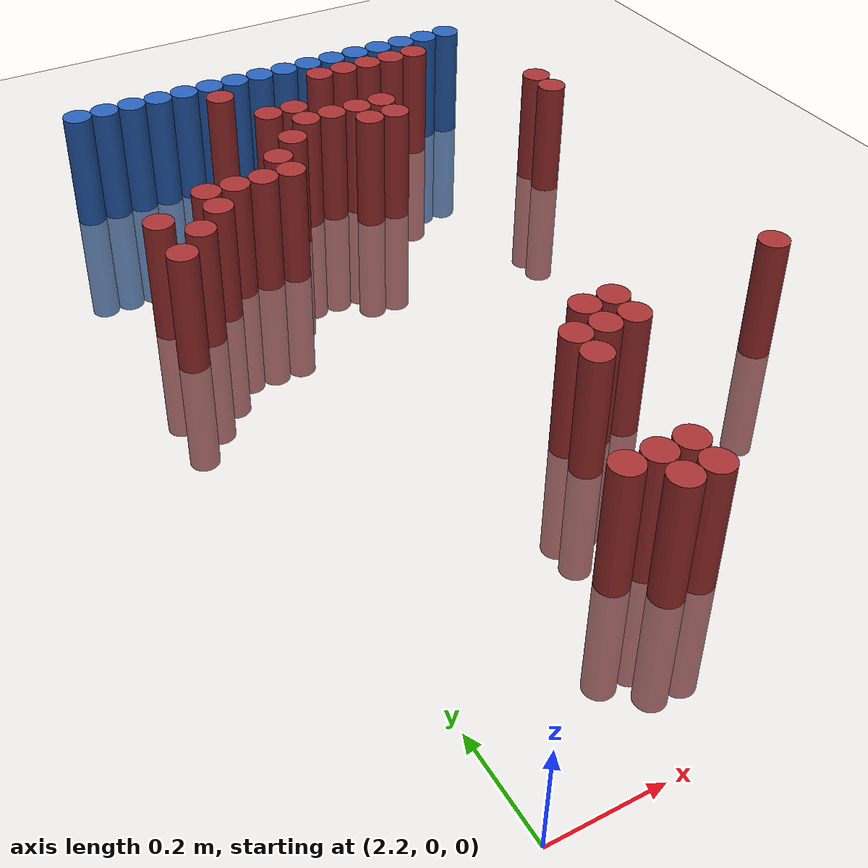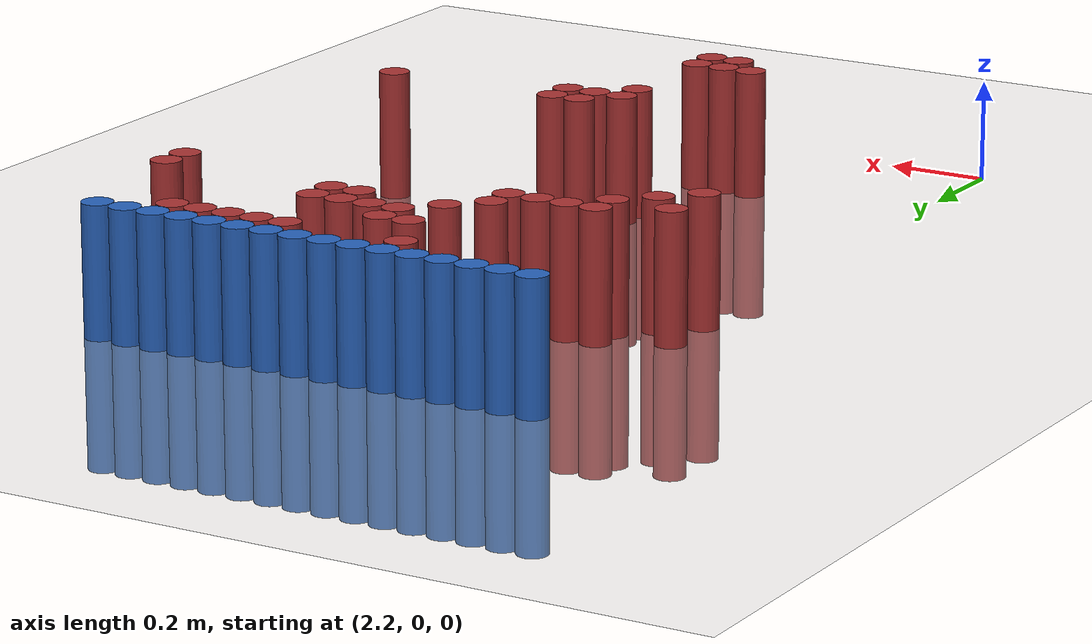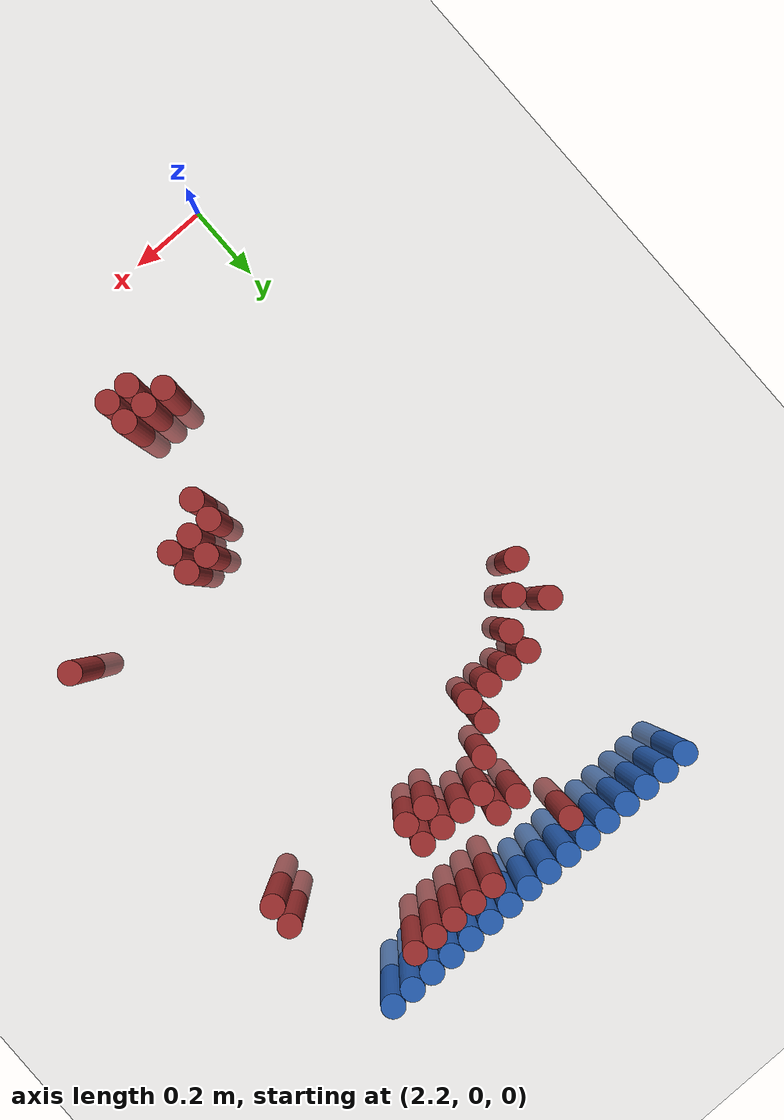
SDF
<sdf version="1.6">
 <world name="default">
  <model name="ground_plane">
   <static>1</static>
   <link name="link">
    <collision name="collision">
     <geometry><plane><normal>0 0 1</normal><size>100 100</size></plane></geometry>
     <surface><friction><ode><mu>100</mu><mu2>50</mu2></ode></friction></surface>
    </collision>
    <visual name="visual">
     <cast_shadows>0</cast_shadows>
     <geometry><plane><normal>0 0 1</normal><size>100 100</size></plane></geometry>
     <material>
      <script><uri>file://media/materials/scripts/gazebo.material</uri><name>Gazebo/Grey</name></script>
     </material>
    </visual>
   </link>
  </model>
  <model name="unit_cylinder_97">
   <static>1</static>
   <pose>2.190000 1.770000 0.000000 0.000000 0.000000 0.000000</pose>
   <link name="link">
    <inertial>
     <mass>1</mass>
     <inertia><ixx>0.145833</ixx><ixy>0</ixy><ixz>0</ixz><iyy>0.145833</iyy><iyz>0</iyz><izz>0.125</izz></inertia>
    </inertial>
    <collision name="collision">
     <geometry><cylinder><radius>0.030000</radius><length>0.5</length></cylinder></geometry>
    </collision>
    <visual name="visual">
     <geometry><cylinder><radius>0.030000</radius><length>0.5</length></cylinder></geometry>
     <material>
      <ambient>0.152000 0.379000 0.720000 1</ambient>
      <diffuse>0.152000 0.379000 0.720000 1</diffuse>
     </material>
     <material>
      <script><name>Gazebo/Grey</name><uri>file://media/materials/scripts/gazebo.material</uri></script>
     </material>
    </visual>
   </link>
  </model>
  <model name="unit_cylinder_98">
   <static>1</static>
   <pose>2.250000 1.770000 0.000000 0.000000 0.000000 0.000000</pose>
   <link name="link">
    <inertial>
     <mass>1</mass>
     <inertia><ixx>0.145833</ixx><ixy>0</ixy><ixz>0</ixz><iyy>0.145833</iyy><iyz>0</iyz><izz>0.125</izz></inertia>
    </inertial>
    <collision name="collision">
     <geometry><cylinder><radius>0.030000</radius><length>0.5</length></cylinder></geometry>
    </collision>
    <visual name="visual">
     <geometry><cylinder><radius>0.030000</radius><length>0.5</length></cylinder></geometry>
     <material>
      <ambient>0.152000 0.379000 0.720000 1</ambient>
      <diffuse>0.152000 0.379000 0.720000 1</diffuse>
     </material>
     <material>
      <script><name>Gazebo/Grey</name><uri>file://media/materials/scripts/gazebo.material</uri></script>
     </material>
    </visual>
   </link>
  </model>
  <model name="unit_cylinder_99">
   <static>1</static>
   <pose>2.310000 1.770000 0.000000 0.000000 0.000000 0.000000</pose>
   <link name="link">
    <inertial>
     <mass>1</mass>
     <inertia><ixx>0.145833</ixx><ixy>0</ixy><ixz>0</ixz><iyy>0.145833</iyy><iyz>0</iyz><izz>0.125</izz></inertia>
    </inertial>
    <collision name="collision">
     <geometry><cylinder><radius>0.030000</radius><length>0.5</length></cylinder></geometry>
    </collision>
    <visual name="visual">
     <geometry><cylinder><radius>0.030000</radius><length>0.5</length></cylinder></geometry>
     <material>
      <ambient>0.152000 0.379000 0.720000 1</ambient>
      <diffuse>0.152000 0.379000 0.720000 1</diffuse>
     </material>
     <material>
      <script><name>Gazebo/Grey</name><uri>file://media/materials/scripts/gazebo.material</uri></script>
     </material>
    </visual>
   </link>
  </model>
  <model name="unit_cylinder_100">
   <static>1</static>
   <pose>2.370000 1.770000 0.000000 0.000000 0.000000 0.000000</pose>
   <link name="link">
    <inertial>
     <mass>1</mass>
     <inertia><ixx>0.145833</ixx><ixy>0</ixy><ixz>0</ixz><iyy>0.145833</iyy><iyz>0</iyz><izz>0.125</izz></inertia>
    </inertial>
    <collision name="collision">
     <geometry><cylinder><radius>0.030000</radius><length>0.5</length></cylinder></geometry>
    </collision>
    <visual name="visual">
     <geometry><cylinder><radius>0.030000</radius><length>0.5</length></cylinder></geometry>
     <material>
      <ambient>0.152000 0.379000 0.720000 1</ambient>
      <diffuse>0.152000 0.379000 0.720000 1</diffuse>
     </material>
     <material>
      <script><name>Gazebo/Grey</name><uri>file://media/materials/scripts/gazebo.material</uri></script>
     </material>
    </visual>
   </link>
  </model>
  <model name="unit_cylinder_101">
   <static>1</static>
   <pose>2.430000 1.770000 0.000000 0.000000 0.000000 0.000000</pose>
   <link name="link">
    <inertial>
     <mass>1</mass>
     <inertia><ixx>0.145833</ixx><ixy>0</ixy><ixz>0</ixz><iyy>0.145833</iyy><iyz>0</iyz><izz>0.125</izz></inertia>
    </inertial>
    <collision name="collision">
     <geometry><cylinder><radius>0.030000</radius><length>0.5</length></cylinder></geometry>
    </collision>
    <visual name="visual">
     <geometry><cylinder><radius>0.030000</radius><length>0.5</length></cylinder></geometry>
     <material>
      <ambient>0.152000 0.379000 0.720000 1</ambient>
      <diffuse>0.152000 0.379000 0.720000 1</diffuse>
     </material>
     <material>
      <script><name>Gazebo/Grey</name><uri>file://media/materials/scripts/gazebo.material</uri></script>
     </material>
    </visual>
   </link>
  </model>
  <model name="unit_cylinder_102">
   <static>1</static>
   <pose>2.490000 1.770000 0.000000 0.000000 0.000000 0.000000</pose>
   <link name="link">
    <inertial>
     <mass>1</mass>
     <inertia><ixx>0.145833</ixx><ixy>0</ixy><ixz>0</ixz><iyy>0.145833</iyy><iyz>0</iyz><izz>0.125</izz></inertia>
    </inertial>
    <collision name="collision">
     <geometry><cylinder><radius>0.030000</radius><length>0.5</length></cylinder></geometry>
    </collision>
    <visual name="visual">
     <geometry><cylinder><radius>0.030000</radius><length>0.5</length></cylinder></geometry>
     <material>
      <ambient>0.152000 0.379000 0.720000 1</ambient>
      <diffuse>0.152000 0.379000 0.720000 1</diffuse>
     </material>
     <material>
      <script><name>Gazebo/Grey</name><uri>file://media/materials/scripts/gazebo.material</uri></script>
     </material>
    </visual>
   </link>
  </model>
  <model name="unit_cylinder_103">
   <static>1</static>
   <pose>2.550000 1.770000 0.000000 0.000000 0.000000 0.000000</pose>
   <link name="link">
    <inertial>
     <mass>1</mass>
     <inertia><ixx>0.145833</ixx><ixy>0</ixy><ixz>0</ixz><iyy>0.145833</iyy><iyz>0</iyz><izz>0.125</izz></inertia>
    </inertial>
    <collision name="collision">
     <geometry><cylinder><radius>0.030000</radius><length>0.5</length></cylinder></geometry>
    </collision>
    <visual name="visual">
     <geometry><cylinder><radius>0.030000</radius><length>0.5</length></cylinder></geometry>
     <material>
      <ambient>0.152000 0.379000 0.720000 1</ambient>
      <diffuse>0.152000 0.379000 0.720000 1</diffuse>
     </material>
     <material>
      <script><name>Gazebo/Grey</name><uri>file://media/materials/scripts/gazebo.material</uri></script>
     </material>
    </visual>
   </link>
  </model>
  <model name="unit_cylinder_104">
   <static>1</static>
   <pose>2.610000 1.770000 0.000000 0.000000 0.000000 0.000000</pose>
   <link name="link">
    <inertial>
     <mass>1</mass>
     <inertia><ixx>0.145833</ixx><ixy>0</ixy><ixz>0</ixz><iyy>0.145833</iyy><iyz>0</iyz><izz>0.125</izz></inertia>
    </inertial>
    <collision name="collision">
     <geometry><cylinder><radius>0.030000</radius><length>0.5</length></cylinder></geometry>
    </collision>
    <visual name="visual">
     <geometry><cylinder><radius>0.030000</radius><length>0.5</length></cylinder></geometry>
     <material>
      <ambient>0.152000 0.379000 0.720000 1</ambient>
      <diffuse>0.152000 0.379000 0.720000 1</diffuse>
     </material>
     <material>
      <script><name>Gazebo/Grey</name><uri>file://media/materials/scripts/gazebo.material</uri></script>
     </material>
    </visual>
   </link>
  </model>
  <model name="unit_cylinder_105">
   <static>1</static>
   <pose>2.670000 1.770000 0.000000 0.000000 0.000000 0.000000</pose>
   <link name="link">
    <inertial>
     <mass>1</mass>
     <inertia><ixx>0.145833</ixx><ixy>0</ixy><ixz>0</ixz><iyy>0.145833</iyy><iyz>0</iyz><izz>0.125</izz></inertia>
    </inertial>
    <collision name="collision">
     <geometry><cylinder><radius>0.030000</radius><length>0.5</length></cylinder></geometry>
    </collision>
    <visual name="visual">
     <geometry><cylinder><radius>0.030000</radius><length>0.5</length></cylinder></geometry>
     <material>
      <ambient>0.152000 0.379000 0.720000 1</ambient>
      <diffuse>0.152000 0.379000 0.720000 1</diffuse>
     </material>
     <material>
      <script><name>Gazebo/Grey</name><uri>file://media/materials/scripts/gazebo.material</uri></script>
     </material>
    </visual>
   </link>
  </model>
  <model name="unit_cylinder_106">
   <static>1</static>
   <pose>2.730000 1.770000 0.000000 0.000000 0.000000 0.000000</pose>
   <link name="link">
    <inertial>
     <mass>1</mass>
     <inertia><ixx>0.145833</ixx><ixy>0</ixy><ixz>0</ixz><iyy>0.145833</iyy><iyz>0</iyz><izz>0.125</izz></inertia>
    </inertial>
    <collision name="collision">
     <geometry><cylinder><radius>0.030000</radius><length>0.5</length></cylinder></geometry>
    </collision>
    <visual name="visual">
     <geometry><cylinder><radius>0.030000</radius><length>0.5</length></cylinder></geometry>
     <material>
      <ambient>0.152000 0.379000 0.720000 1</ambient>
      <diffuse>0.152000 0.379000 0.720000 1</diffuse>
     </material>
     <material>
      <script><name>Gazebo/Grey</name><uri>file://media/materials/scripts/gazebo.material</uri></script>
     </material>
    </visual>
   </link>
  </model>
  <model name="unit_cylinder_107">
   <static>1</static>
   <pose>2.790000 1.770000 0.000000 0.000000 0.000000 0.000000</pose>
   <link name="link">
    <inertial>
     <mass>1</mass>
     <inertia><ixx>0.145833</ixx><ixy>0</ixy><ixz>0</ixz><iyy>0.145833</iyy><iyz>0</iyz><izz>0.125</izz></inertia>
    </inertial>
    <collision name="collision">
     <geometry><cylinder><radius>0.030000</radius><length>0.5</length></cylinder></geometry>
    </collision>
    <visual name="visual">
     <geometry><cylinder><radius>0.030000</radius><length>0.5</length></cylinder></geometry>
     <material>
      <ambient>0.152000 0.379000 0.720000 1</ambient>
      <diffuse>0.152000 0.379000 0.720000 1</diffuse>
     </material>
     <material>
      <script><name>Gazebo/Grey</name><uri>file://media/materials/scripts/gazebo.material</uri></script>
     </material>
    </visual>
   </link>
  </model>
  <model name="unit_cylinder_108">
   <static>1</static>
   <pose>2.850000 1.770000 0.000000 0.000000 0.000000 0.000000</pose>
   <link name="link">
    <inertial>
     <mass>1</mass>
     <inertia><ixx>0.145833</ixx><ixy>0</ixy><ixz>0</ixz><iyy>0.145833</iyy><iyz>0</iyz><izz>0.125</izz></inertia>
    </inertial>
    <collision name="collision">
     <geometry><cylinder><radius>0.030000</radius><length>0.5</length></cylinder></geometry>
    </collision>
    <visual name="visual">
     <geometry><cylinder><radius>0.030000</radius><length>0.5</length></cylinder></geometry>
     <material>
      <ambient>0.152000 0.379000 0.720000 1</ambient>
      <diffuse>0.152000 0.379000 0.720000 1</diffuse>
     </material>
     <material>
      <script><name>Gazebo/Grey</name><uri>file://media/materials/scripts/gazebo.material</uri></script>
     </material>
    </visual>
   </link>
  </model>
  <model name="unit_cylinder_109">
   <static>1</static>
   <pose>2.910000 1.770000 0.000000 0.000000 0.000000 0.000000</pose>
   <link name="link">
    <inertial>
     <mass>1</mass>
     <inertia><ixx>0.145833</ixx><ixy>0</ixy><ixz>0</ixz><iyy>0.145833</iyy><iyz>0</iyz><izz>0.125</izz></inertia>
    </inertial>
    <collision name="collision">
     <geometry><cylinder><radius>0.030000</radius><length>0.5</length></cylinder></geometry>
    </collision>
    <visual name="visual">
     <geometry><cylinder><radius>0.030000</radius><length>0.5</length></cylinder></geometry>
     <material>
      <ambient>0.152000 0.379000 0.720000 1</ambient>
      <diffuse>0.152000 0.379000 0.720000 1</diffuse>
     </material>
     <material>
      <script><name>Gazebo/Grey</name><uri>file://media/materials/scripts/gazebo.material</uri></script>
     </material>
    </visual>
   </link>
  </model>
  <model name="unit_cylinder_110">
   <static>1</static>
   <pose>2.970000 1.770000 0.000000 0.000000 0.000000 0.000000</pose>
   <link name="link">
    <inertial>
     <mass>1</mass>
     <inertia><ixx>0.145833</ixx><ixy>0</ixy><ixz>0</ixz><iyy>0.145833</iyy><iyz>0</iyz><izz>0.125</izz></inertia>
    </inertial>
    <collision name="collision">
     <geometry><cylinder><radius>0.030000</radius><length>0.5</length></cylinder></geometry>
    </collision>
    <visual name="visual">
     <geometry><cylinder><radius>0.030000</radius><length>0.5</length></cylinder></geometry>
     <material>
      <ambient>0.152000 0.379000 0.720000 1</ambient>
      <diffuse>0.152000 0.379000 0.720000 1</diffuse>
     </material>
     <material>
      <script><name>Gazebo/Grey</name><uri>file://media/materials/scripts/gazebo.material</uri></script>
     </material>
    </visual>
   </link>
  </model>
  <model name="unit_cylinder_111">
   <static>1</static>
   <pose>3.030000 1.770000 0.000000 0.000000 0.000000 0.000000</pose>
   <link name="link">
    <inertial>
     <mass>1</mass>
     <inertia><ixx>0.145833</ixx><ixy>0</ixy><ixz>0</ixz><iyy>0.145833</iyy><iyz>0</iyz><izz>0.125</izz></inertia>
    </inertial>
    <collision name="collision">
     <geometry><cylinder><radius>0.030000</radius><length>0.5</length></cylinder></geometry>
    </collision>
    <visual name="visual">
     <geometry><cylinder><radius>0.030000</radius><length>0.5</length></cylinder></geometry>
     <material>
      <ambient>0.152000 0.379000 0.720000 1</ambient>
      <diffuse>0.152000 0.379000 0.720000 1</diffuse>
     </material>
     <material>
      <script><name>Gazebo/Grey</name><uri>file://media/materials/scripts/gazebo.material</uri></script>
     </material>
    </visual>
   </link>
  </model>
  <model name="unit_cylinder_112">
   <static>1</static>
   <pose>3.090000 1.770000 0.000000 0.000000 0.000000 0.000000</pose>
   <link name="link">
    <inertial>
     <mass>1</mass>
     <inertia><ixx>0.145833</ixx><ixy>0</ixy><ixz>0</ixz><iyy>0.145833</iyy><iyz>0</iyz><izz>0.125</izz></inertia>
    </inertial>
    <collision name="collision">
     <geometry><cylinder><radius>0.030000</radius><length>0.5</length></cylinder></geometry>
    </collision>
    <visual name="visual">
     <geometry><cylinder><radius>0.030000</radius><length>0.5</length></cylinder></geometry>
     <material>
      <ambient>0.152000 0.379000 0.720000 1</ambient>
      <diffuse>0.152000 0.379000 0.720000 1</diffuse>
     </material>
     <material>
      <script><name>Gazebo/Grey</name><uri>file://media/materials/scripts/gazebo.material</uri></script>
     </material>
    </visual>
   </link>
  </model>
  <model name="unit_cylinder_125">
   <static>1</static>
   <pose>2.490000 1.710000 0.000000 0.000000 0.000000 0.000000</pose>
   <link name="link">
    <inertial>
     <mass>1</mass>
     <inertia><ixx>0.145833</ixx><ixy>0</ixy><ixz>0</ixz><iyy>0.145833</iyy><iyz>0</iyz><izz>0.125</izz></inertia>
    </inertial>
    <collision name="collision">
     <geometry><cylinder><radius>0.030000</radius><length>0.5</length></cylinder></geometry>
    </collision>
    <visual name="visual">
     <geometry><cylinder><radius>0.030000</radius><length>0.5</length></cylinder></geometry>
     <material>
      <ambient>0.648000 0.192000 0.192000 1</ambient>
      <diffuse>0.648000 0.192000 0.192000 1</diffuse>
     </material>
     <material>
      <script><name>Gazebo/Grey</name><uri>file://media/materials/scripts/gazebo.material</uri></script>
     </material>
    </visual>
   </link>
  </model>
  <model name="unit_cylinder_126">
   <static>1</static>
   <pose>2.730000 1.710000 0.000000 0.000000 0.000000 0.000000</pose>
   <link name="link">
    <inertial>
     <mass>1</mass>
     <inertia><ixx>0.145833</ixx><ixy>0</ixy><ixz>0</ixz><iyy>0.145833</iyy><iyz>0</iyz><izz>0.125</izz></inertia>
    </inertial>
    <collision name="collision">
     <geometry><cylinder><radius>0.030000</radius><length>0.5</length></cylinder></geometry>
    </collision>
    <visual name="visual">
     <geometry><cylinder><radius>0.030000</radius><length>0.5</length></cylinder></geometry>
     <material>
      <ambient>0.648000 0.192000 0.192000 1</ambient>
      <diffuse>0.648000 0.192000 0.192000 1</diffuse>
     </material>
     <material>
      <script><name>Gazebo/Grey</name><uri>file://media/materials/scripts/gazebo.material</uri></script>
     </material>
    </visual>
   </link>
  </model>
  <model name="unit_cylinder_127">
   <static>1</static>
   <pose>2.790000 1.710000 0.000000 0.000000 0.000000 0.000000</pose>
   <link name="link">
    <inertial>
     <mass>1</mass>
     <inertia><ixx>0.145833</ixx><ixy>0</ixy><ixz>0</ixz><iyy>0.145833</iyy><iyz>0</iyz><izz>0.125</izz></inertia>
    </inertial>
    <collision name="collision">
     <geometry><cylinder><radius>0.030000</radius><length>0.5</length></cylinder></geometry>
    </collision>
    <visual name="visual">
     <geometry><cylinder><radius>0.030000</radius><length>0.5</length></cylinder></geometry>
     <material>
      <ambient>0.648000 0.192000 0.192000 1</ambient>
      <diffuse>0.648000 0.192000 0.192000 1</diffuse>
     </material>
     <material>
      <script><name>Gazebo/Grey</name><uri>file://media/materials/scripts/gazebo.material</uri></script>
     </material>
    </visual>
   </link>
  </model>
  <model name="unit_cylinder_128">
   <static>1</static>
   <pose>2.850000 1.710000 0.000000 0.000000 0.000000 0.000000</pose>
   <link name="link">
    <inertial>
     <mass>1</mass>
     <inertia><ixx>0.145833</ixx><ixy>0</ixy><ixz>0</ixz><iyy>0.145833</iyy><iyz>0</iyz><izz>0.125</izz></inertia>
    </inertial>
    <collision name="collision">
     <geometry><cylinder><radius>0.030000</radius><length>0.5</length></cylinder></geometry>
    </collision>
    <visual name="visual">
     <geometry><cylinder><radius>0.030000</radius><length>0.5</length></cylinder></geometry>
     <material>
      <ambient>0.648000 0.192000 0.192000 1</ambient>
      <diffuse>0.648000 0.192000 0.192000 1</diffuse>
     </material>
     <material>
      <script><name>Gazebo/Grey</name><uri>file://media/materials/scripts/gazebo.material</uri></script>
     </material>
    </visual>
   </link>
  </model>
  <model name="unit_cylinder_129">
   <static>1</static>
   <pose>2.910000 1.710000 0.000000 0.000000 0.000000 0.000000</pose>
   <link name="link">
    <inertial>
     <mass>1</mass>
     <inertia><ixx>0.145833</ixx><ixy>0</ixy><ixz>0</ixz><iyy>0.145833</iyy><iyz>0</iyz><izz>0.125</izz></inertia>
    </inertial>
    <collision name="collision">
     <geometry><cylinder><radius>0.030000</radius><length>0.5</length></cylinder></geometry>
    </collision>
    <visual name="visual">
     <geometry><cylinder><radius>0.030000</radius><length>0.5</length></cylinder></geometry>
     <material>
      <ambient>0.648000 0.192000 0.192000 1</ambient>
      <diffuse>0.648000 0.192000 0.192000 1</diffuse>
     </material>
     <material>
      <script><name>Gazebo/Grey</name><uri>file://media/materials/scripts/gazebo.material</uri></script>
     </material>
    </visual>
   </link>
  </model>
  <model name="unit_cylinder_130">
   <static>1</static>
   <pose>2.970000 1.710000 0.000000 0.000000 0.000000 0.000000</pose>
   <link name="link">
    <inertial>
     <mass>1</mass>
     <inertia><ixx>0.145833</ixx><ixy>0</ixy><ixz>0</ixz><iyy>0.145833</iyy><iyz>0</iyz><izz>0.125</izz></inertia>
    </inertial>
    <collision name="collision">
     <geometry><cylinder><radius>0.030000</radius><length>0.5</length></cylinder></geometry>
    </collision>
    <visual name="visual">
     <geometry><cylinder><radius>0.030000</radius><length>0.5</length></cylinder></geometry>
     <material>
      <ambient>0.648000 0.192000 0.192000 1</ambient>
      <diffuse>0.648000 0.192000 0.192000 1</diffuse>
     </material>
     <material>
      <script><name>Gazebo/Grey</name><uri>file://media/materials/scripts/gazebo.material</uri></script>
     </material>
    </visual>
   </link>
  </model>
  <model name="unit_cylinder_143">
   <static>1</static>
   <pose>2.550000 1.590000 0.000000 0.000000 0.000000 0.000000</pose>
   <link name="link">
    <inertial>
     <mass>1</mass>
     <inertia><ixx>0.145833</ixx><ixy>0</ixy><ixz>0</ixz><iyy>0.145833</iyy><iyz>0</iyz><izz>0.125</izz></inertia>
    </inertial>
    <collision name="collision">
     <geometry><cylinder><radius>0.030000</radius><length>0.5</length></cylinder></geometry>
    </collision>
    <visual name="visual">
     <geometry><cylinder><radius>0.030000</radius><length>0.5</length></cylinder></geometry>
     <material>
      <ambient>0.648000 0.192000 0.192000 1</ambient>
      <diffuse>0.648000 0.192000 0.192000 1</diffuse>
     </material>
     <material>
      <script><name>Gazebo/Grey</name><uri>file://media/materials/scripts/gazebo.material</uri></script>
     </material>
    </visual>
   </link>
  </model>
  <model name="unit_cylinder_144">
   <static>1</static>
   <pose>2.610000 1.590000 0.000000 0.000000 0.000000 0.000000</pose>
   <link name="link">
    <inertial>
     <mass>1</mass>
     <inertia><ixx>0.145833</ixx><ixy>0</ixy><ixz>0</ixz><iyy>0.145833</iyy><iyz>0</iyz><izz>0.125</izz></inertia>
    </inertial>
    <collision name="collision">
     <geometry><cylinder><radius>0.030000</radius><length>0.5</length></cylinder></geometry>
    </collision>
    <visual name="visual">
     <geometry><cylinder><radius>0.030000</radius><length>0.5</length></cylinder></geometry>
     <material>
      <ambient>0.648000 0.192000 0.192000 1</ambient>
      <diffuse>0.648000 0.192000 0.192000 1</diffuse>
     </material>
     <material>
      <script><name>Gazebo/Grey</name><uri>file://media/materials/scripts/gazebo.material</uri></script>
     </material>
    </visual>
   </link>
  </model>
  <model name="unit_cylinder_152">
   <static>1</static>
   <pose>2.610000 1.530000 0.000000 0.000000 0.000000 0.000000</pose>
   <link name="link">
    <inertial>
     <mass>1</mass>
     <inertia><ixx>0.145833</ixx><ixy>0</ixy><ixz>0</ixz><iyy>0.145833</iyy><iyz>0</iyz><izz>0.125</izz></inertia>
    </inertial>
    <collision name="collision">
     <geometry><cylinder><radius>0.030000</radius><length>0.5</length></cylinder></geometry>
    </collision>
    <visual name="visual">
     <geometry><cylinder><radius>0.030000</radius><length>0.5</length></cylinder></geometry>
     <material>
      <ambient>0.648000 0.192000 0.192000 1</ambient>
      <diffuse>0.648000 0.192000 0.192000 1</diffuse>
     </material>
     <material>
      <script><name>Gazebo/Grey</name><uri>file://media/materials/scripts/gazebo.material</uri></script>
     </material>
    </visual>
   </link>
  </model>
  <model name="unit_cylinder_153">
   <static>1</static>
   <pose>2.670000 1.530000 0.000000 0.000000 0.000000 0.000000</pose>
   <link name="link">
    <inertial>
     <mass>1</mass>
     <inertia><ixx>0.145833</ixx><ixy>0</ixy><ixz>0</ixz><iyy>0.145833</iyy><iyz>0</iyz><izz>0.125</izz></inertia>
    </inertial>
    <collision name="collision">
     <geometry><cylinder><radius>0.030000</radius><length>0.5</length></cylinder></geometry>
    </collision>
    <visual name="visual">
     <geometry><cylinder><radius>0.030000</radius><length>0.5</length></cylinder></geometry>
     <material>
      <ambient>0.648000 0.192000 0.192000 1</ambient>
      <diffuse>0.648000 0.192000 0.192000 1</diffuse>
     </material>
     <material>
      <script><name>Gazebo/Grey</name><uri>file://media/materials/scripts/gazebo.material</uri></script>
     </material>
    </visual>
   </link>
  </model>
  <model name="unit_cylinder_154">
   <static>1</static>
   <pose>2.730000 1.530000 0.000000 0.000000 0.000000 0.000000</pose>
   <link name="link">
    <inertial>
     <mass>1</mass>
     <inertia><ixx>0.145833</ixx><ixy>0</ixy><ixz>0</ixz><iyy>0.145833</iyy><iyz>0</iyz><izz>0.125</izz></inertia>
    </inertial>
    <collision name="collision">
     <geometry><cylinder><radius>0.030000</radius><length>0.5</length></cylinder></geometry>
    </collision>
    <visual name="visual">
     <geometry><cylinder><radius>0.030000</radius><length>0.5</length></cylinder></geometry>
     <material>
      <ambient>0.648000 0.192000 0.192000 1</ambient>
      <diffuse>0.648000 0.192000 0.192000 1</diffuse>
     </material>
     <material>
      <script><name>Gazebo/Grey</name><uri>file://media/materials/scripts/gazebo.material</uri></script>
     </material>
    </visual>
   </link>
  </model>
  <model name="unit_cylinder_155">
   <static>1</static>
   <pose>2.790000 1.530000 0.000000 0.000000 0.000000 0.000000</pose>
   <link name="link">
    <inertial>
     <mass>1</mass>
     <inertia><ixx>0.145833</ixx><ixy>0</ixy><ixz>0</ixz><iyy>0.145833</iyy><iyz>0</iyz><izz>0.125</izz></inertia>
    </inertial>
    <collision name="collision">
     <geometry><cylinder><radius>0.030000</radius><length>0.5</length></cylinder></geometry>
    </collision>
    <visual name="visual">
     <geometry><cylinder><radius>0.030000</radius><length>0.5</length></cylinder></geometry>
     <material>
      <ambient>0.648000 0.192000 0.192000 1</ambient>
      <diffuse>0.648000 0.192000 0.192000 1</diffuse>
     </material>
     <material>
      <script><name>Gazebo/Grey</name><uri>file://media/materials/scripts/gazebo.material</uri></script>
     </material>
    </visual>
   </link>
  </model>
  <model name="unit_cylinder_160">
   <static>1</static>
   <pose>2.550000 1.470000 0.000000 0.000000 0.000000 0.000000</pose>
   <link name="link">
    <inertial>
     <mass>1</mass>
     <inertia><ixx>0.145833</ixx><ixy>0</ixy><ixz>0</ixz><iyy>0.145833</iyy><iyz>0</iyz><izz>0.125</izz></inertia>
    </inertial>
    <collision name="collision">
     <geometry><cylinder><radius>0.030000</radius><length>0.5</length></cylinder></geometry>
    </collision>
    <visual name="visual">
     <geometry><cylinder><radius>0.030000</radius><length>0.5</length></cylinder></geometry>
     <material>
      <ambient>0.648000 0.192000 0.192000 1</ambient>
      <diffuse>0.648000 0.192000 0.192000 1</diffuse>
     </material>
     <material>
      <script><name>Gazebo/Grey</name><uri>file://media/materials/scripts/gazebo.material</uri></script>
     </material>
    </visual>
   </link>
  </model>
  <model name="unit_cylinder_161">
   <static>1</static>
   <pose>2.730000 1.470000 0.000000 0.000000 0.000000 0.000000</pose>
   <link name="link">
    <inertial>
     <mass>1</mass>
     <inertia><ixx>0.145833</ixx><ixy>0</ixy><ixz>0</ixz><iyy>0.145833</iyy><iyz>0</iyz><izz>0.125</izz></inertia>
    </inertial>
    <collision name="collision">
     <geometry><cylinder><radius>0.030000</radius><length>0.5</length></cylinder></geometry>
    </collision>
    <visual name="visual">
     <geometry><cylinder><radius>0.030000</radius><length>0.5</length></cylinder></geometry>
     <material>
      <ambient>0.648000 0.192000 0.192000 1</ambient>
      <diffuse>0.648000 0.192000 0.192000 1</diffuse>
     </material>
     <material>
      <script><name>Gazebo/Grey</name><uri>file://media/materials/scripts/gazebo.material</uri></script>
     </material>
    </visual>
   </link>
  </model>
  <model name="unit_cylinder_162">
   <static>1</static>
   <pose>2.790000 1.470000 0.000000 0.000000 0.000000 0.000000</pose>
   <link name="link">
    <inertial>
     <mass>1</mass>
     <inertia><ixx>0.145833</ixx><ixy>0</ixy><ixz>0</ixz><iyy>0.145833</iyy><iyz>0</iyz><izz>0.125</izz></inertia>
    </inertial>
    <collision name="collision">
     <geometry><cylinder><radius>0.030000</radius><length>0.5</length></cylinder></geometry>
    </collision>
    <visual name="visual">
     <geometry><cylinder><radius>0.030000</radius><length>0.5</length></cylinder></geometry>
     <material>
      <ambient>0.648000 0.192000 0.192000 1</ambient>
      <diffuse>0.648000 0.192000 0.192000 1</diffuse>
     </material>
     <material>
      <script><name>Gazebo/Grey</name><uri>file://media/materials/scripts/gazebo.material</uri></script>
     </material>
    </visual>
   </link>
  </model>
  <model name="unit_cylinder_163">
   <static>1</static>
   <pose>3.150000 1.470000 0.000000 0.000000 0.000000 0.000000</pose>
   <link name="link">
    <inertial>
     <mass>1</mass>
     <inertia><ixx>0.145833</ixx><ixy>0</ixy><ixz>0</ixz><iyy>0.145833</iyy><iyz>0</iyz><izz>0.125</izz></inertia>
    </inertial>
    <collision name="collision">
     <geometry><cylinder><radius>0.030000</radius><length>0.5</length></cylinder></geometry>
    </collision>
    <visual name="visual">
     <geometry><cylinder><radius>0.030000</radius><length>0.5</length></cylinder></geometry>
     <material>
      <ambient>0.648000 0.192000 0.192000 1</ambient>
      <diffuse>0.648000 0.192000 0.192000 1</diffuse>
     </material>
     <material>
      <script><name>Gazebo/Grey</name><uri>file://media/materials/scripts/gazebo.material</uri></script>
     </material>
    </visual>
   </link>
  </model>
  <model name="unit_cylinder_166">
   <static>1</static>
   <pose>2.490000 1.410000 0.000000 0.000000 0.000000 0.000000</pose>
   <link name="link">
    <inertial>
     <mass>1</mass>
     <inertia><ixx>0.145833</ixx><ixy>0</ixy><ixz>0</ixz><iyy>0.145833</iyy><iyz>0</iyz><izz>0.125</izz></inertia>
    </inertial>
    <collision name="collision">
     <geometry><cylinder><radius>0.030000</radius><length>0.5</length></cylinder></geometry>
    </collision>
    <visual name="visual">
     <geometry><cylinder><radius>0.030000</radius><length>0.5</length></cylinder></geometry>
     <material>
      <ambient>0.648000 0.192000 0.192000 1</ambient>
      <diffuse>0.648000 0.192000 0.192000 1</diffuse>
     </material>
     <material>
      <script><name>Gazebo/Grey</name><uri>file://media/materials/scripts/gazebo.material</uri></script>
     </material>
    </visual>
   </link>
  </model>
  <model name="unit_cylinder_167">
   <static>1</static>
   <pose>3.150000 1.410000 0.000000 0.000000 0.000000 0.000000</pose>
   <link name="link">
    <inertial>
     <mass>1</mass>
     <inertia><ixx>0.145833</ixx><ixy>0</ixy><ixz>0</ixz><iyy>0.145833</iyy><iyz>0</iyz><izz>0.125</izz></inertia>
    </inertial>
    <collision name="collision">
     <geometry><cylinder><radius>0.030000</radius><length>0.5</length></cylinder></geometry>
    </collision>
    <visual name="visual">
     <geometry><cylinder><radius>0.030000</radius><length>0.5</length></cylinder></geometry>
     <material>
      <ambient>0.648000 0.192000 0.192000 1</ambient>
      <diffuse>0.648000 0.192000 0.192000 1</diffuse>
     </material>
     <material>
      <script><name>Gazebo/Grey</name><uri>file://media/materials/scripts/gazebo.material</uri></script>
     </material>
    </visual>
   </link>
  </model>
  <model name="unit_cylinder_170">
   <static>1</static>
   <pose>2.310000 1.350000 0.000000 0.000000 0.000000 0.000000</pose>
   <link name="link">
    <inertial>
     <mass>1</mass>
     <inertia><ixx>0.145833</ixx><ixy>0</ixy><ixz>0</ixz><iyy>0.145833</iyy><iyz>0</iyz><izz>0.125</izz></inertia>
    </inertial>
    <collision name="collision">
     <geometry><cylinder><radius>0.030000</radius><length>0.5</length></cylinder></geometry>
    </collision>
    <visual name="visual">
     <geometry><cylinder><radius>0.030000</radius><length>0.5</length></cylinder></geometry>
     <material>
      <ambient>0.648000 0.192000 0.192000 1</ambient>
      <diffuse>0.648000 0.192000 0.192000 1</diffuse>
     </material>
     <material>
      <script><name>Gazebo/Grey</name><uri>file://media/materials/scripts/gazebo.material</uri></script>
     </material>
    </visual>
   </link>
  </model>
  <model name="unit_cylinder_171">
   <static>1</static>
   <pose>2.370000 1.350000 0.000000 0.000000 0.000000 0.000000</pose>
   <link name="link">
    <inertial>
     <mass>1</mass>
     <inertia><ixx>0.145833</ixx><ixy>0</ixy><ixz>0</ixz><iyy>0.145833</iyy><iyz>0</iyz><izz>0.125</izz></inertia>
    </inertial>
    <collision name="collision">
     <geometry><cylinder><radius>0.030000</radius><length>0.5</length></cylinder></geometry>
    </collision>
    <visual name="visual">
     <geometry><cylinder><radius>0.030000</radius><length>0.5</length></cylinder></geometry>
     <material>
      <ambient>0.648000 0.192000 0.192000 1</ambient>
      <diffuse>0.648000 0.192000 0.192000 1</diffuse>
     </material>
     <material>
      <script><name>Gazebo/Grey</name><uri>file://media/materials/scripts/gazebo.material</uri></script>
     </material>
    </visual>
   </link>
  </model>
  <model name="unit_cylinder_172">
   <static>1</static>
   <pose>2.430000 1.350000 0.000000 0.000000 0.000000 0.000000</pose>
   <link name="link">
    <inertial>
     <mass>1</mass>
     <inertia><ixx>0.145833</ixx><ixy>0</ixy><ixz>0</ixz><iyy>0.145833</iyy><iyz>0</iyz><izz>0.125</izz></inertia>
    </inertial>
    <collision name="collision">
     <geometry><cylinder><radius>0.030000</radius><length>0.5</length></cylinder></geometry>
    </collision>
    <visual name="visual">
     <geometry><cylinder><radius>0.030000</radius><length>0.5</length></cylinder></geometry>
     <material>
      <ambient>0.648000 0.192000 0.192000 1</ambient>
      <diffuse>0.648000 0.192000 0.192000 1</diffuse>
     </material>
     <material>
      <script><name>Gazebo/Grey</name><uri>file://media/materials/scripts/gazebo.material</uri></script>
     </material>
    </visual>
   </link>
  </model>
  <model name="unit_cylinder_173">
   <static>1</static>
   <pose>2.490000 1.350000 0.000000 0.000000 0.000000 0.000000</pose>
   <link name="link">
    <inertial>
     <mass>1</mass>
     <inertia><ixx>0.145833</ixx><ixy>0</ixy><ixz>0</ixz><iyy>0.145833</iyy><iyz>0</iyz><izz>0.125</izz></inertia>
    </inertial>
    <collision name="collision">
     <geometry><cylinder><radius>0.030000</radius><length>0.5</length></cylinder></geometry>
    </collision>
    <visual name="visual">
     <geometry><cylinder><radius>0.030000</radius><length>0.5</length></cylinder></geometry>
     <material>
      <ambient>0.648000 0.192000 0.192000 1</ambient>
      <diffuse>0.648000 0.192000 0.192000 1</diffuse>
     </material>
     <material>
      <script><name>Gazebo/Grey</name><uri>file://media/materials/scripts/gazebo.material</uri></script>
     </material>
    </visual>
   </link>
  </model>
  <model name="unit_cylinder_174">
   <static>1</static>
   <pose>2.190000 1.290000 0.000000 0.000000 0.000000 0.000000</pose>
   <link name="link">
    <inertial>
     <mass>1</mass>
     <inertia><ixx>0.145833</ixx><ixy>0</ixy><ixz>0</ixz><iyy>0.145833</iyy><iyz>0</iyz><izz>0.125</izz></inertia>
    </inertial>
    <collision name="collision">
     <geometry><cylinder><radius>0.030000</radius><length>0.5</length></cylinder></geometry>
    </collision>
    <visual name="visual">
     <geometry><cylinder><radius>0.030000</radius><length>0.5</length></cylinder></geometry>
     <material>
      <ambient>0.648000 0.192000 0.192000 1</ambient>
      <diffuse>0.648000 0.192000 0.192000 1</diffuse>
     </material>
     <material>
      <script><name>Gazebo/Grey</name><uri>file://media/materials/scripts/gazebo.material</uri></script>
     </material>
    </visual>
   </link>
  </model>
  <model name="unit_cylinder_175">
   <static>1</static>
   <pose>2.310000 1.290000 0.000000 0.000000 0.000000 0.000000</pose>
   <link name="link">
    <inertial>
     <mass>1</mass>
     <inertia><ixx>0.145833</ixx><ixy>0</ixy><ixz>0</ixz><iyy>0.145833</iyy><iyz>0</iyz><izz>0.125</izz></inertia>
    </inertial>
    <collision name="collision">
     <geometry><cylinder><radius>0.030000</radius><length>0.5</length></cylinder></geometry>
    </collision>
    <visual name="visual">
     <geometry><cylinder><radius>0.030000</radius><length>0.5</length></cylinder></geometry>
     <material>
      <ambient>0.648000 0.192000 0.192000 1</ambient>
      <diffuse>0.648000 0.192000 0.192000 1</diffuse>
     </material>
     <material>
      <script><name>Gazebo/Grey</name><uri>file://media/materials/scripts/gazebo.material</uri></script>
     </material>
    </visual>
   </link>
  </model>
  <model name="unit_cylinder_178">
   <static>1</static>
   <pose>2.250000 1.230000 0.000000 0.000000 0.000000 0.000000</pose>
   <link name="link">
    <inertial>
     <mass>1</mass>
     <inertia><ixx>0.145833</ixx><ixy>0</ixy><ixz>0</ixz><iyy>0.145833</iyy><iyz>0</iyz><izz>0.125</izz></inertia>
    </inertial>
    <collision name="collision">
     <geometry><cylinder><radius>0.030000</radius><length>0.5</length></cylinder></geometry>
    </collision>
    <visual name="visual">
     <geometry><cylinder><radius>0.030000</radius><length>0.5</length></cylinder></geometry>
     <material>
      <ambient>0.648000 0.192000 0.192000 1</ambient>
      <diffuse>0.648000 0.192000 0.192000 1</diffuse>
     </material>
     <material>
      <script><name>Gazebo/Grey</name><uri>file://media/materials/scripts/gazebo.material</uri></script>
     </material>
    </visual>
   </link>
  </model>
  <model name="unit_cylinder_180">
   <static>1</static>
   <pose>2.190000 1.170000 0.000000 0.000000 0.000000 0.000000</pose>
   <link name="link">
    <inertial>
     <mass>1</mass>
     <inertia><ixx>0.145833</ixx><ixy>0</ixy><ixz>0</ixz><iyy>0.145833</iyy><iyz>0</iyz><izz>0.125</izz></inertia>
    </inertial>
    <collision name="collision">
     <geometry><cylinder><radius>0.030000</radius><length>0.5</length></cylinder></geometry>
    </collision>
    <visual name="visual">
     <geometry><cylinder><radius>0.030000</radius><length>0.5</length></cylinder></geometry>
     <material>
      <ambient>0.648000 0.192000 0.192000 1</ambient>
      <diffuse>0.648000 0.192000 0.192000 1</diffuse>
     </material>
     <material>
      <script><name>Gazebo/Grey</name><uri>file://media/materials/scripts/gazebo.material</uri></script>
     </material>
    </visual>
   </link>
  </model>
  <model name="unit_cylinder_192">
   <static>1</static>
   <pose>2.730000 0.690000 0.000000 0.000000 0.000000 0.000000</pose>
   <link name="link">
    <inertial>
     <mass>1</mass>
     <inertia><ixx>0.145833</ixx><ixy>0</ixy><ixz>0</ixz><iyy>0.145833</iyy><iyz>0</iyz><izz>0.125</izz></inertia>
    </inertial>
    <collision name="collision">
     <geometry><cylinder><radius>0.030000</radius><length>0.5</length></cylinder></geometry>
    </collision>
    <visual name="visual">
     <geometry><cylinder><radius>0.030000</radius><length>0.5</length></cylinder></geometry>
     <material>
      <ambient>0.648000 0.192000 0.192000 1</ambient>
      <diffuse>0.648000 0.192000 0.192000 1</diffuse>
     </material>
     <material>
      <script><name>Gazebo/Grey</name><uri>file://media/materials/scripts/gazebo.material</uri></script>
     </material>
    </visual>
   </link>
  </model>
  <model name="unit_cylinder_193">
   <static>1</static>
   <pose>2.790000 0.690000 0.000000 0.000000 0.000000 0.000000</pose>
   <link name="link">
    <inertial>
     <mass>1</mass>
     <inertia><ixx>0.145833</ixx><ixy>0</ixy><ixz>0</ixz><iyy>0.145833</iyy><iyz>0</iyz><izz>0.125</izz></inertia>
    </inertial>
    <collision name="collision">
     <geometry><cylinder><radius>0.030000</radius><length>0.5</length></cylinder></geometry>
    </collision>
    <visual name="visual">
     <geometry><cylinder><radius>0.030000</radius><length>0.5</length></cylinder></geometry>
     <material>
      <ambient>0.648000 0.192000 0.192000 1</ambient>
      <diffuse>0.648000 0.192000 0.192000 1</diffuse>
     </material>
     <material>
      <script><name>Gazebo/Grey</name><uri>file://media/materials/scripts/gazebo.material</uri></script>
     </material>
    </visual>
   </link>
  </model>
  <model name="unit_cylinder_194">
   <static>1</static>
   <pose>3.150000 0.690000 0.000000 0.000000 0.000000 0.000000</pose>
   <link name="link">
    <inertial>
     <mass>1</mass>
     <inertia><ixx>0.145833</ixx><ixy>0</ixy><ixz>0</ixz><iyy>0.145833</iyy><iyz>0</iyz><izz>0.125</izz></inertia>
    </inertial>
    <collision name="collision">
     <geometry><cylinder><radius>0.030000</radius><length>0.5</length></cylinder></geometry>
    </collision>
    <visual name="visual">
     <geometry><cylinder><radius>0.030000</radius><length>0.5</length></cylinder></geometry>
     <material>
      <ambient>0.648000 0.192000 0.192000 1</ambient>
      <diffuse>0.648000 0.192000 0.192000 1</diffuse>
     </material>
     <material>
      <script><name>Gazebo/Grey</name><uri>file://media/materials/scripts/gazebo.material</uri></script>
     </material>
    </visual>
   </link>
  </model>
  <model name="unit_cylinder_198">
   <static>1</static>
   <pose>2.670000 0.630000 0.000000 0.000000 0.000000 0.000000</pose>
   <link name="link">
    <inertial>
     <mass>1</mass>
     <inertia><ixx>0.145833</ixx><ixy>0</ixy><ixz>0</ixz><iyy>0.145833</iyy><iyz>0</iyz><izz>0.125</izz></inertia>
    </inertial>
    <collision name="collision">
     <geometry><cylinder><radius>0.030000</radius><length>0.5</length></cylinder></geometry>
    </collision>
    <visual name="visual">
     <geometry><cylinder><radius>0.030000</radius><length>0.5</length></cylinder></geometry>
     <material>
      <ambient>0.648000 0.192000 0.192000 1</ambient>
      <diffuse>0.648000 0.192000 0.192000 1</diffuse>
     </material>
     <material>
      <script><name>Gazebo/Grey</name><uri>file://media/materials/scripts/gazebo.material</uri></script>
     </material>
    </visual>
   </link>
  </model>
  <model name="unit_cylinder_199">
   <static>1</static>
   <pose>2.730000 0.630000 0.000000 0.000000 0.000000 0.000000</pose>
   <link name="link">
    <inertial>
     <mass>1</mass>
     <inertia><ixx>0.145833</ixx><ixy>0</ixy><ixz>0</ixz><iyy>0.145833</iyy><iyz>0</iyz><izz>0.125</izz></inertia>
    </inertial>
    <collision name="collision">
     <geometry><cylinder><radius>0.030000</radius><length>0.5</length></cylinder></geometry>
    </collision>
    <visual name="visual">
     <geometry><cylinder><radius>0.030000</radius><length>0.5</length></cylinder></geometry>
     <material>
      <ambient>0.648000 0.192000 0.192000 1</ambient>
      <diffuse>0.648000 0.192000 0.192000 1</diffuse>
     </material>
     <material>
      <script><name>Gazebo/Grey</name><uri>file://media/materials/scripts/gazebo.material</uri></script>
     </material>
    </visual>
   </link>
  </model>
  <model name="unit_cylinder_200">
   <static>1</static>
   <pose>2.790000 0.630000 0.000000 0.000000 0.000000 0.000000</pose>
   <link name="link">
    <inertial>
     <mass>1</mass>
     <inertia><ixx>0.145833</ixx><ixy>0</ixy><ixz>0</ixz><iyy>0.145833</iyy><iyz>0</iyz><izz>0.125</izz></inertia>
    </inertial>
    <collision name="collision">
     <geometry><cylinder><radius>0.030000</radius><length>0.5</length></cylinder></geometry>
    </collision>
    <visual name="visual">
     <geometry><cylinder><radius>0.030000</radius><length>0.5</length></cylinder></geometry>
     <material>
      <ambient>0.648000 0.192000 0.192000 1</ambient>
      <diffuse>0.648000 0.192000 0.192000 1</diffuse>
     </material>
     <material>
      <script><name>Gazebo/Grey</name><uri>file://media/materials/scripts/gazebo.material</uri></script>
     </material>
    </visual>
   </link>
  </model>
  <model name="unit_cylinder_202">
   <static>1</static>
   <pose>2.670000 0.570000 0.000000 0.000000 0.000000 0.000000</pose>
   <link name="link">
    <inertial>
     <mass>1</mass>
     <inertia><ixx>0.145833</ixx><ixy>0</ixy><ixz>0</ixz><iyy>0.145833</iyy><iyz>0</iyz><izz>0.125</izz></inertia>
    </inertial>
    <collision name="collision">
     <geometry><cylinder><radius>0.030000</radius><length>0.5</length></cylinder></geometry>
    </collision>
    <visual name="visual">
     <geometry><cylinder><radius>0.030000</radius><length>0.5</length></cylinder></geometry>
     <material>
      <ambient>0.648000 0.192000 0.192000 1</ambient>
      <diffuse>0.648000 0.192000 0.192000 1</diffuse>
     </material>
     <material>
      <script><name>Gazebo/Grey</name><uri>file://media/materials/scripts/gazebo.material</uri></script>
     </material>
    </visual>
   </link>
  </model>
  <model name="unit_cylinder_206">
   <static>1</static>
   <pose>2.550000 0.330000 0.000000 0.000000 0.000000 0.000000</pose>
   <link name="link">
    <inertial>
     <mass>1</mass>
     <inertia><ixx>0.145833</ixx><ixy>0</ixy><ixz>0</ixz><iyy>0.145833</iyy><iyz>0</iyz><izz>0.125</izz></inertia>
    </inertial>
    <collision name="collision">
     <geometry><cylinder><radius>0.030000</radius><length>0.5</length></cylinder></geometry>
    </collision>
    <visual name="visual">
     <geometry><cylinder><radius>0.030000</radius><length>0.5</length></cylinder></geometry>
     <material>
      <ambient>0.648000 0.192000 0.192000 1</ambient>
      <diffuse>0.648000 0.192000 0.192000 1</diffuse>
     </material>
     <material>
      <script><name>Gazebo/Grey</name><uri>file://media/materials/scripts/gazebo.material</uri></script>
     </material>
    </visual>
   </link>
  </model>
  <model name="unit_cylinder_207">
   <static>1</static>
   <pose>2.610000 0.330000 0.000000 0.000000 0.000000 0.000000</pose>
   <link name="link">
    <inertial>
     <mass>1</mass>
     <inertia><ixx>0.145833</ixx><ixy>0</ixy><ixz>0</ixz><iyy>0.145833</iyy><iyz>0</iyz><izz>0.125</izz></inertia>
    </inertial>
    <collision name="collision">
     <geometry><cylinder><radius>0.030000</radius><length>0.5</length></cylinder></geometry>
    </collision>
    <visual name="visual">
     <geometry><cylinder><radius>0.030000</radius><length>0.5</length></cylinder></geometry>
     <material>
      <ambient>0.648000 0.192000 0.192000 1</ambient>
      <diffuse>0.648000 0.192000 0.192000 1</diffuse>
     </material>
     <material>
      <script><name>Gazebo/Grey</name><uri>file://media/materials/scripts/gazebo.material</uri></script>
     </material>
    </visual>
   </link>
  </model>
  <model name="unit_cylinder_208">
   <static>1</static>
   <pose>2.670000 0.330000 0.000000 0.000000 0.000000 0.000000</pose>
   <link name="link">
    <inertial>
     <mass>1</mass>
     <inertia><ixx>0.145833</ixx><ixy>0</ixy><ixz>0</ixz><iyy>0.145833</iyy><iyz>0</iyz><izz>0.125</izz></inertia>
    </inertial>
    <collision name="collision">
     <geometry><cylinder><radius>0.030000</radius><length>0.5</length></cylinder></geometry>
    </collision>
    <visual name="visual">
     <geometry><cylinder><radius>0.030000</radius><length>0.5</length></cylinder></geometry>
     <material>
      <ambient>0.648000 0.192000 0.192000 1</ambient>
      <diffuse>0.648000 0.192000 0.192000 1</diffuse>
     </material>
     <material>
      <script><name>Gazebo/Grey</name><uri>file://media/materials/scripts/gazebo.material</uri></script>
     </material>
    </visual>
   </link>
  </model>
  <model name="unit_cylinder_210">
   <static>1</static>
   <pose>2.610000 0.270000 0.000000 0.000000 0.000000 0.000000</pose>
   <link name="link">
    <inertial>
     <mass>1</mass>
     <inertia><ixx>0.145833</ixx><ixy>0</ixy><ixz>0</ixz><iyy>0.145833</iyy><iyz>0</iyz><izz>0.125</izz></inertia>
    </inertial>
    <collision name="collision">
     <geometry><cylinder><radius>0.030000</radius><length>0.5</length></cylinder></geometry>
    </collision>
    <visual name="visual">
     <geometry><cylinder><radius>0.030000</radius><length>0.5</length></cylinder></geometry>
     <material>
      <ambient>0.648000 0.192000 0.192000 1</ambient>
      <diffuse>0.648000 0.192000 0.192000 1</diffuse>
     </material>
     <material>
      <script><name>Gazebo/Grey</name><uri>file://media/materials/scripts/gazebo.material</uri></script>
     </material>
    </visual>
   </link>
  </model>
  <model name="unit_cylinder_211">
   <static>1</static>
   <pose>2.670000 0.270000 0.000000 0.000000 0.000000 0.000000</pose>
   <link name="link">
    <inertial>
     <mass>1</mass>
     <inertia><ixx>0.145833</ixx><ixy>0</ixy><ixz>0</ixz><iyy>0.145833</iyy><iyz>0</iyz><izz>0.125</izz></inertia>
    </inertial>
    <collision name="collision">
     <geometry><cylinder><radius>0.030000</radius><length>0.5</length></cylinder></geometry>
    </collision>
    <visual name="visual">
     <geometry><cylinder><radius>0.030000</radius><length>0.5</length></cylinder></geometry>
     <material>
      <ambient>0.648000 0.192000 0.192000 1</ambient>
      <diffuse>0.648000 0.192000 0.192000 1</diffuse>
     </material>
     <material>
      <script><name>Gazebo/Grey</name><uri>file://media/materials/scripts/gazebo.material</uri></script>
     </material>
    </visual>
   </link>
  </model>
 </world>
</sdf>
